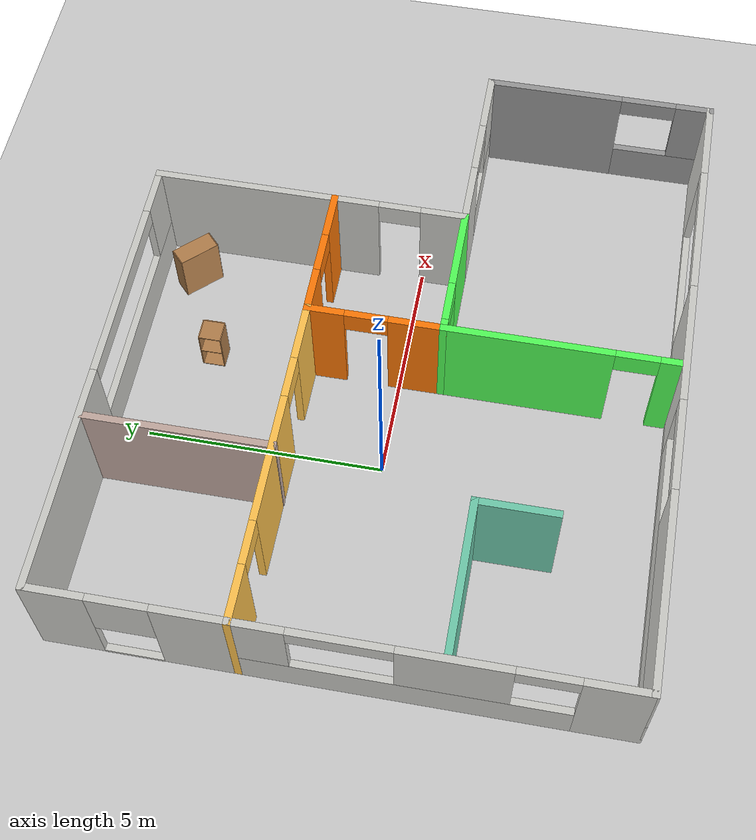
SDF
<sdf version="1.6">
 <world name="default">
  <model name="ground_plane">
   <static>1</static>
   <link name="link">
    <collision name="collision">
     <geometry><plane><normal>0 0 1</normal><size>100 100</size></plane></geometry>
     <surface>
      <contact><collide_bitmask>65535</collide_bitmask></contact>
      <friction><ode><mu>100</mu><mu2>50</mu2></ode></friction>
     </surface>
    </collision>
    <visual name="visual">
     <cast_shadows>0</cast_shadows>
     <geometry><plane><normal>0 0 1</normal><size>100 100</size></plane></geometry>
     <material>
      <script><uri>file://media/materials/scripts/gazebo.material</uri><name>Gazebo/Grey</name></script>
     </material>
    </visual>
   </link>
  </model>
  <model name="Apartment">
   <pose>2.01045 -0.0125 0 0 -0 0</pose>
   <link name="Wall_11">
    <pose>1.52493 1.92485 0 0 -0 0</pose>
    <visual name="Wall_11_Visual_0">
     <pose>-0.9825 0 1.25 0 -0 0</pose>
     <geometry><box><size>1.035 0.15 2.5</size></box></geometry>
     <material>
      <script><uri>file://media/materials/scripts/gazebo.material</uri><name>Gazebo/Grey</name></script>
      <ambient>0.996078 0.47451 0.0196078 1</ambient>
     </material>
     <meta><layer>0</layer></meta>
    </visual>
    <collision name="Wall_11_Collision_0">
     <geometry><box><size>1.035 0.15 2.5</size></box></geometry>
     <pose>-0.9825 0 1.25 0 -0 0</pose>
    </collision>
    <visual name="Wall_11_Visual_1">
     <pose>0.9675 0 1.25 0 -0 0</pose>
     <geometry><box><size>1.065 0.15 2.5</size></box></geometry>
     <material>
      <script><uri>file://media/materials/scripts/gazebo.material</uri><name>Gazebo/Grey</name></script>
      <ambient>0.996078 0.47451 0.0196078 1</ambient>
     </material>
     <meta><layer>0</layer></meta>
    </visual>
    <collision name="Wall_11_Collision_1">
     <geometry><box><size>1.065 0.15 2.5</size></box></geometry>
     <pose>0.9675 0 1.25 0 -0 0</pose>
    </collision>
    <visual name="Wall_11_Visual_2">
     <pose>-0.015 0 2.25 0 -0 0</pose>
     <geometry><box><size>0.9 0.15 0.5</size></box></geometry>
     <material>
      <script><uri>file://media/materials/scripts/gazebo.material</uri><name>Gazebo/Grey</name></script>
      <ambient>0.996078 0.47451 0.0196078 1</ambient>
     </material>
     <meta><layer>0</layer></meta>
    </visual>
    <collision name="Wall_11_Collision_2">
     <geometry><box><size>0.9 0.15 0.5</size></box></geometry>
     <pose>-0.015 0 2.25 0 -0 0</pose>
    </collision>
   </link>
   <link name="Wall_12">
    <pose>2.94993 0.519847 0 0 0 -1.5708</pose>
    <visual name="Wall_12_Visual_0">
     <pose>-0.962535 0 1.25 0 -0 0</pose>
     <geometry><box><size>1.03493 0.15 2.5</size></box></geometry>
     <material>
      <script><uri>file://media/materials/scripts/gazebo.material</uri><name>Gazebo/CeilingTiled</name></script>
      <ambient>1 1 1 1</ambient>
     </material>
     <meta><layer>0</layer></meta>
    </visual>
    <collision name="Wall_12_Collision_0">
     <geometry><box><size>1.03493 0.15 2.5</size></box></geometry>
     <pose>-0.962535 0 1.25 0 -0 0</pose>
    </collision>
    <visual name="Wall_12_Visual_1">
     <pose>0.967465 0 1.25 0 -0 0</pose>
     <geometry><box><size>1.02507 0.15 2.5</size></box></geometry>
     <material>
      <script><uri>file://media/materials/scripts/gazebo.material</uri><name>Gazebo/CeilingTiled</name></script>
      <ambient>1 1 1 1</ambient>
     </material>
     <meta><layer>0</layer></meta>
    </visual>
    <collision name="Wall_12_Collision_1">
     <geometry><box><size>1.02507 0.15 2.5</size></box></geometry>
     <pose>0.967465 0 1.25 0 -0 0</pose>
    </collision>
    <visual name="Wall_12_Visual_2">
     <pose>0.00493 0 2.25 0 -0 0</pose>
     <geometry><box><size>0.9 0.15 0.5</size></box></geometry>
     <material>
      <script><uri>file://media/materials/scripts/gazebo.material</uri><name>Gazebo/CeilingTiled</name></script>
      <ambient>1 1 1 1</ambient>
     </material>
     <meta><layer>0</layer></meta>
    </visual>
    <collision name="Wall_12_Collision_2">
     <geometry><box><size>0.9 0.15 0.5</size></box></geometry>
     <pose>0.00493 0 2.25 0 -0 0</pose>
    </collision>
   </link>
   <link name="Wall_13">
    <pose>1.52493 -0.885153 0 0 -0 3.14159</pose>
    <visual name="Wall_13_Visual_0">
     <pose>-0.592536 0 1.25 0 -0 0</pose>
     <geometry><box><size>1.81507 0.15 2.5</size></box></geometry>
     <material>
      <script><uri>file://media/materials/scripts/gazebo.material</uri><name>Gazebo/Grey</name></script>
      <ambient>0.321569 1 0.345098 1</ambient>
     </material>
     <meta><layer>0</layer></meta>
    </visual>
    <collision name="Wall_13_Collision_0">
     <geometry><box><size>1.81507 0.15 2.5</size></box></geometry>
     <pose>-0.592536 0 1.25 0 -0 0</pose>
    </collision>
    <visual name="Wall_13_Visual_1">
     <pose>1.35754 0 1.25 0 -0 0</pose>
     <geometry><box><size>0.285073 0.15 2.5</size></box></geometry>
     <material>
      <script><uri>file://media/materials/scripts/gazebo.material</uri><name>Gazebo/Grey</name></script>
      <ambient>0.321569 1 0.345098 1</ambient>
     </material>
     <meta><layer>0</layer></meta>
    </visual>
    <collision name="Wall_13_Collision_1">
     <geometry><box><size>0.285073 0.15 2.5</size></box></geometry>
     <pose>1.35754 0 1.25 0 -0 0</pose>
    </collision>
    <visual name="Wall_13_Visual_2">
     <pose>0.765 0 2.25 0 -0 0</pose>
     <geometry><box><size>0.9 0.15 0.5</size></box></geometry>
     <material>
      <script><uri>file://media/materials/scripts/gazebo.material</uri><name>Gazebo/Grey</name></script>
      <ambient>0.321569 1 0.345098 1</ambient>
     </material>
     <meta><layer>0</layer></meta>
    </visual>
    <collision name="Wall_13_Collision_2">
     <geometry><box><size>0.9 0.15 0.5</size></box></geometry>
     <pose>0.765 0 2.25 0 -0 0</pose>
    </collision>
   </link>
   <link name="Wall_14">
    <pose>0.099928 0.519847 0 0 -0 1.5708</pose>
    <visual name="Wall_14_Visual_0">
     <pose>-0.8739 0 1.25 0 -0 0</pose>
     <geometry><box><size>1.21261 0.15 2.5</size></box></geometry>
     <material>
      <script><uri>file://media/materials/scripts/gazebo.material</uri><name>Gazebo/Grey</name></script>
      <ambient>0.996078 0.47451 0.0196078 1</ambient>
     </material>
     <meta><layer>0</layer></meta>
    </visual>
    <collision name="Wall_14_Collision_0">
     <geometry><box><size>1.21261 0.15 2.5</size></box></geometry>
     <pose>-0.8739 0 1.25 0 -0 0</pose>
    </collision>
    <visual name="Wall_14_Visual_1">
     <pose>1.0563 0 1.25 0 -0 0</pose>
     <geometry><box><size>0.847799 0.15 2.5</size></box></geometry>
     <material>
      <script><uri>file://media/materials/scripts/gazebo.material</uri><name>Gazebo/Grey</name></script>
      <ambient>0.996078 0.47451 0.0196078 1</ambient>
     </material>
     <meta><layer>0</layer></meta>
    </visual>
    <collision name="Wall_14_Collision_1">
     <geometry><box><size>0.847799 0.15 2.5</size></box></geometry>
     <pose>1.0563 0 1.25 0 -0 0</pose>
    </collision>
    <visual name="Wall_14_Visual_2">
     <pose>0.182404 0 2.25 0 -0 0</pose>
     <geometry><box><size>0.9 0.15 0.5</size></box></geometry>
     <material>
      <script><uri>file://media/materials/scripts/gazebo.material</uri><name>Gazebo/Grey</name></script>
      <ambient>0.996078 0.47451 0.0196078 1</ambient>
     </material>
     <meta><layer>0</layer></meta>
    </visual>
    <collision name="Wall_14_Collision_2">
     <geometry><box><size>0.9 0.15 0.5</size></box></geometry>
     <pose>0.182404 0 2.25 0 -0 0</pose>
    </collision>
   </link>
   <link name="Wall_16">
    <pose>4.87493 -0.885153 0 0 -0 0</pose>
    <visual name="Wall_16_Visual_0">
     <pose>-1.29069 0 1.25 0 -0 0</pose>
     <geometry><box><size>1.41862 0.15 2.5</size></box></geometry>
     <material>
      <script><uri>file://media/materials/scripts/gazebo.material</uri><name>Gazebo/CeilingTiled</name></script>
      <ambient>0.760784 0.662745 0.627451 1</ambient>
     </material>
     <meta><layer>0</layer></meta>
    </visual>
    <collision name="Wall_16_Collision_0">
     <geometry><box><size>1.41862 0.15 2.5</size></box></geometry>
     <pose>-1.29069 0 1.25 0 -0 0</pose>
    </collision>
    <visual name="Wall_16_Visual_1">
     <pose>0.709309 0 0.45 0 -0 0</pose>
     <geometry><box><size>2.58138 0.15 0.9</size></box></geometry>
     <material>
      <script><uri>file://media/materials/scripts/gazebo.material</uri><name>Gazebo/CeilingTiled</name></script>
      <ambient>0.760784 0.662745 0.627451 1</ambient>
     </material>
     <meta><layer>0</layer></meta>
    </visual>
    <collision name="Wall_16_Collision_1">
     <geometry><box><size>2.58138 0.15 0.9</size></box></geometry>
     <pose>0.709309 0 0.45 0 -0 0</pose>
    </collision>
    <visual name="Wall_16_Visual_2">
     <pose>1.30931 0 1.7 0 -0 0</pose>
     <geometry><box><size>1.38138 0.15 1.6</size></box></geometry>
     <material>
      <script><uri>file://media/materials/scripts/gazebo.material</uri><name>Gazebo/CeilingTiled</name></script>
      <ambient>0.760784 0.662745 0.627451 1</ambient>
     </material>
     <meta><layer>0</layer></meta>
    </visual>
    <collision name="Wall_16_Collision_2">
     <geometry><box><size>1.38138 0.15 1.6</size></box></geometry>
     <pose>1.30931 0 1.7 0 -0 0</pose>
    </collision>
    <visual name="Wall_16_Visual_3">
     <pose>0.018619 0 2.3 0 -0 0</pose>
     <geometry><box><size>1.2 0.15 0.4</size></box></geometry>
     <material>
      <script><uri>file://media/materials/scripts/gazebo.material</uri><name>Gazebo/CeilingTiled</name></script>
      <ambient>0.760784 0.662745 0.627451 1</ambient>
     </material>
     <meta><layer>0</layer></meta>
    </visual>
    <collision name="Wall_16_Collision_3">
     <geometry><box><size>1.2 0.15 0.4</size></box></geometry>
     <pose>0.018619 0 2.3 0 -0 0</pose>
    </collision>
   </link>
   <link name="Wall_18">
    <pose>6.80018 -3.33 0 0 0 -1.57069</pose>
    <visual name="Wall_18_Visual_0">
     <pose>-1.01487 0 1.25 0 -0 0</pose>
     <geometry><box><size>3.00995 0.15 2.5</size></box></geometry>
     <material>
      <script><uri>file://media/materials/scripts/gazebo.material</uri><name>Gazebo/Grey</name></script>
      <ambient>1 1 1 1</ambient>
     </material>
     <meta><layer>0</layer></meta>
    </visual>
    <collision name="Wall_18_Collision_0">
     <geometry><box><size>3.00995 0.15 2.5</size></box></geometry>
     <pose>-1.01487 0 1.25 0 -0 0</pose>
    </collision>
    <visual name="Wall_18_Visual_1">
     <pose>1.50497 0 0.45 0 -0 0</pose>
     <geometry><box><size>2.02974 0.15 0.9</size></box></geometry>
     <material>
      <script><uri>file://media/materials/scripts/gazebo.material</uri><name>Gazebo/Grey</name></script>
      <ambient>1 1 1 1</ambient>
     </material>
     <meta><layer>0</layer></meta>
    </visual>
    <collision name="Wall_18_Collision_1">
     <geometry><box><size>2.02974 0.15 0.9</size></box></geometry>
     <pose>1.50497 0 0.45 0 -0 0</pose>
    </collision>
    <visual name="Wall_18_Visual_2">
     <pose>2.10497 0 1.7 0 -0 0</pose>
     <geometry><box><size>0.829741 0.15 1.6</size></box></geometry>
     <material>
      <script><uri>file://media/materials/scripts/gazebo.material</uri><name>Gazebo/Grey</name></script>
      <ambient>1 1 1 1</ambient>
     </material>
     <meta><layer>0</layer></meta>
    </visual>
    <collision name="Wall_18_Collision_2">
     <geometry><box><size>0.829741 0.15 1.6</size></box></geometry>
     <pose>2.10497 0 1.7 0 -0 0</pose>
    </collision>
    <visual name="Wall_18_Visual_3">
     <pose>1.0901 0 2.3 0 -0 0</pose>
     <geometry><box><size>1.2 0.15 0.4</size></box></geometry>
     <material>
      <script><uri>file://media/materials/scripts/gazebo.material</uri><name>Gazebo/Grey</name></script>
      <ambient>1 1 1 1</ambient>
     </material>
     <meta><layer>0</layer></meta>
    </visual>
    <collision name="Wall_18_Collision_3">
     <geometry><box><size>1.2 0.15 0.4</size></box></geometry>
     <pose>1.0901 0 2.3 0 -0 0</pose>
    </collision>
   </link>
   <link name="Wall_19">
    <pose>0.000427 -5.77484 0 0 -0 3.14159</pose>
    <visual name="Wall_19_Visual_0">
     <pose>-5.94597 0 1.25 0 -0 0</pose>
     <geometry><box><size>1.85806 0.15 2.5</size></box></geometry>
     <material>
      <script><uri>file://media/materials/scripts/gazebo.material</uri><name>Gazebo/CeilingTiled</name></script>
      <ambient>1 1 1 1</ambient>
     </material>
     <meta><layer>0</layer></meta>
    </visual>
    <collision name="Wall_19_Collision_0">
     <geometry><box><size>1.85806 0.15 2.5</size></box></geometry>
     <pose>-5.94597 0 1.25 0 -0 0</pose>
    </collision>
    <visual name="Wall_19_Visual_1">
     <pose>0.929031 0 0.1 0 -0 0</pose>
     <geometry><box><size>11.8919 0.15 0.2</size></box></geometry>
     <material>
      <script><uri>file://media/materials/scripts/gazebo.material</uri><name>Gazebo/CeilingTiled</name></script>
      <ambient>1 1 1 1</ambient>
     </material>
     <meta><layer>0</layer></meta>
    </visual>
    <collision name="Wall_19_Collision_1">
     <geometry><box><size>11.8919 0.15 0.2</size></box></geometry>
     <pose>0.929031 0 0.1 0 -0 0</pose>
    </collision>
    <visual name="Wall_19_Visual_2">
     <pose>-0.643119 0 1.35 0 -0 0</pose>
     <geometry><box><size>2.74764 0.15 2.3</size></box></geometry>
     <material>
      <script><uri>file://media/materials/scripts/gazebo.material</uri><name>Gazebo/CeilingTiled</name></script>
      <ambient>1 1 1 1</ambient>
     </material>
     <meta><layer>0</layer></meta>
    </visual>
    <collision name="Wall_19_Collision_2">
     <geometry><box><size>2.74764 0.15 2.3</size></box></geometry>
     <pose>-0.643119 0 1.35 0 -0 0</pose>
    </collision>
    <visual name="Wall_19_Visual_3">
     <pose>3.80285 0 0.55 0 -0 0</pose>
     <geometry><box><size>6.1443 0.15 0.7</size></box></geometry>
     <material>
      <script><uri>file://media/materials/scripts/gazebo.material</uri><name>Gazebo/CeilingTiled</name></script>
      <ambient>1 1 1 1</ambient>
     </material>
     <meta><layer>0</layer></meta>
    </visual>
    <collision name="Wall_19_Collision_3">
     <geometry><box><size>6.1443 0.15 0.7</size></box></geometry>
     <pose>3.80285 0 0.55 0 -0 0</pose>
    </collision>
    <visual name="Wall_19_Visual_4">
     <pose>4.80285 0 1.7 0 -0 0</pose>
     <geometry><box><size>4.1443 0.15 1.6</size></box></geometry>
     <material>
      <script><uri>file://media/materials/scripts/gazebo.material</uri><name>Gazebo/CeilingTiled</name></script>
      <ambient>1 1 1 1</ambient>
     </material>
     <meta><layer>0</layer></meta>
    </visual>
    <collision name="Wall_19_Collision_4">
     <geometry><box><size>4.1443 0.15 1.6</size></box></geometry>
     <pose>4.80285 0 1.7 0 -0 0</pose>
    </collision>
    <visual name="Wall_19_Visual_5">
     <pose>1.7307 0 2.3 0 -0 0</pose>
     <geometry><box><size>2 0.15 0.4</size></box></geometry>
     <material>
      <script><uri>file://media/materials/scripts/gazebo.material</uri><name>Gazebo/CeilingTiled</name></script>
      <ambient>1 1 1 1</ambient>
     </material>
     <meta><layer>0</layer></meta>
    </visual>
    <collision name="Wall_19_Collision_5">
     <geometry><box><size>2 0.15 0.4</size></box></geometry>
     <pose>1.7307 0 2.3 0 -0 0</pose>
    </collision>
    <visual name="Wall_19_Visual_6">
     <pose>-3.51694 0 2.35 0 -0 0</pose>
     <geometry><box><size>3 0.15 0.3</size></box></geometry>
     <material>
      <script><uri>file://media/materials/scripts/gazebo.material</uri><name>Gazebo/CeilingTiled</name></script>
      <ambient>1 1 1 1</ambient>
     </material>
     <meta><layer>0</layer></meta>
    </visual>
    <collision name="Wall_19_Collision_6">
     <geometry><box><size>3 0.15 0.3</size></box></geometry>
     <pose>-3.51694 0 2.35 0 -0 0</pose>
    </collision>
   </link>
   <link name="Wall_20">
    <pose>-6.79982 -1.925 0 0 -0 1.57086</pose>
    <visual name="Wall_20_Visual_0">
     <pose>-3.25093 0 1.25 0 -0 0</pose>
     <geometry><box><size>1.34782 0.15 2.5</size></box></geometry>
     <material>
      <script><uri>file://media/materials/scripts/gazebo.material</uri><name>Gazebo/CeilingTiled</name></script>
      <ambient>1 1 1 1</ambient>
     </material>
     <meta><layer>0</layer></meta>
    </visual>
    <collision name="Wall_20_Collision_0">
     <geometry><box><size>1.34782 0.15 2.5</size></box></geometry>
     <pose>-3.25093 0 1.25 0 -0 0</pose>
    </collision>
    <visual name="Wall_20_Visual_1">
     <pose>0.67391 0 0.45 0 -0 0</pose>
     <geometry><box><size>6.50187 0.15 0.9</size></box></geometry>
     <material>
      <script><uri>file://media/materials/scripts/gazebo.material</uri><name>Gazebo/CeilingTiled</name></script>
      <ambient>1 1 1 1</ambient>
     </material>
     <meta><layer>0</layer></meta>
    </visual>
    <collision name="Wall_20_Collision_1">
     <geometry><box><size>6.50187 0.15 0.9</size></box></geometry>
     <pose>0.67391 0 0.45 0 -0 0</pose>
    </collision>
    <visual name="Wall_20_Visual_2">
     <pose>-0.288611 0 1.7 0 -0 0</pose>
     <geometry><box><size>2.17682 0.15 1.6</size></box></geometry>
     <material>
      <script><uri>file://media/materials/scripts/gazebo.material</uri><name>Gazebo/CeilingTiled</name></script>
      <ambient>1 1 1 1</ambient>
     </material>
     <meta><layer>0</layer></meta>
    </visual>
    <collision name="Wall_20_Collision_2">
     <geometry><box><size>2.17682 0.15 1.6</size></box></geometry>
     <pose>-0.288611 0 1.7 0 -0 0</pose>
    </collision>
    <visual name="Wall_20_Visual_3">
     <pose>3.36232 0 1.7 0 -0 0</pose>
     <geometry><box><size>1.12504 0.15 1.6</size></box></geometry>
     <material>
      <script><uri>file://media/materials/scripts/gazebo.material</uri><name>Gazebo/CeilingTiled</name></script>
      <ambient>1 1 1 1</ambient>
     </material>
     <meta><layer>0</layer></meta>
    </visual>
    <collision name="Wall_20_Collision_3">
     <geometry><box><size>1.12504 0.15 1.6</size></box></geometry>
     <pose>3.36232 0 1.7 0 -0 0</pose>
    </collision>
    <visual name="Wall_20_Visual_4">
     <pose>-1.97702 0 2.3 0 -0 0</pose>
     <geometry><box><size>1.2 0.15 0.4</size></box></geometry>
     <material>
      <script><uri>file://media/materials/scripts/gazebo.material</uri><name>Gazebo/CeilingTiled</name></script>
      <ambient>1 1 1 1</ambient>
     </material>
     <meta><layer>0</layer></meta>
    </visual>
    <collision name="Wall_20_Collision_4">
     <geometry><box><size>1.2 0.15 0.4</size></box></geometry>
     <pose>-1.97702 0 2.3 0 -0 0</pose>
    </collision>
    <visual name="Wall_20_Visual_5">
     <pose>1.7998 0 2.3 0 -0 0</pose>
     <geometry><box><size>2 0.15 0.4</size></box></geometry>
     <material>
      <script><uri>file://media/materials/scripts/gazebo.material</uri><name>Gazebo/CeilingTiled</name></script>
      <ambient>1 1 1 1</ambient>
     </material>
     <meta><layer>0</layer></meta>
    </visual>
    <collision name="Wall_20_Collision_5">
     <geometry><box><size>2 0.15 0.4</size></box></geometry>
     <pose>1.7998 0 2.3 0 -0 0</pose>
    </collision>
   </link>
   <link name="Wall_21">
    <pose>-3.35007 1.92485 0 0 -0 0</pose>
    <visual name="Wall_21_Visual_0">
     <pose>-2.92004 0 1.25 0 -0 0</pose>
     <geometry><box><size>1.21065 0.15 2.5</size></box></geometry>
     <material>
      <script><uri>file://media/materials/scripts/gazebo.material</uri><name>Gazebo/Grey</name></script>
      <ambient>1 0.764706 0.305882 1</ambient>
     </material>
     <meta><layer>0</layer></meta>
    </visual>
    <collision name="Wall_21_Collision_0">
     <geometry><box><size>1.21065 0.15 2.5</size></box></geometry>
     <pose>-2.92004 0 1.25 0 -0 0</pose>
    </collision>
    <visual name="Wall_21_Visual_1">
     <pose>-0.045749 0 1.25 0 -0 0</pose>
     <geometry><box><size>2.73793 0.15 2.5</size></box></geometry>
     <material>
      <script><uri>file://media/materials/scripts/gazebo.material</uri><name>Gazebo/Grey</name></script>
      <ambient>1 0.764706 0.305882 1</ambient>
     </material>
     <meta><layer>0</layer></meta>
    </visual>
    <collision name="Wall_21_Collision_1">
     <geometry><box><size>2.73793 0.15 2.5</size></box></geometry>
     <pose>-0.045749 0 1.25 0 -0 0</pose>
    </collision>
    <visual name="Wall_21_Visual_2">
     <pose>2.87429 0 1.25 0 -0 0</pose>
     <geometry><box><size>1.30214 0.15 2.5</size></box></geometry>
     <material>
      <script><uri>file://media/materials/scripts/gazebo.material</uri><name>Gazebo/Grey</name></script>
      <ambient>1 0.764706 0.305882 1</ambient>
     </material>
     <meta><layer>0</layer></meta>
    </visual>
    <collision name="Wall_21_Collision_2">
     <geometry><box><size>1.30214 0.15 2.5</size></box></geometry>
     <pose>2.87429 0 1.25 0 -0 0</pose>
    </collision>
    <visual name="Wall_21_Visual_3">
     <pose>-1.86471 0 2.25 0 -0 0</pose>
     <geometry><box><size>0.9 0.15 0.5</size></box></geometry>
     <material>
      <script><uri>file://media/materials/scripts/gazebo.material</uri><name>Gazebo/Grey</name></script>
      <ambient>1 0.764706 0.305882 1</ambient>
     </material>
     <meta><layer>0</layer></meta>
    </visual>
    <collision name="Wall_21_Collision_3">
     <geometry><box><size>0.9 0.15 0.5</size></box></geometry>
     <pose>-1.86471 0 2.25 0 -0 0</pose>
    </collision>
    <visual name="Wall_21_Visual_4">
     <pose>1.77322 0 2.25 0 -0 0</pose>
     <geometry><box><size>0.9 0.15 0.5</size></box></geometry>
     <material>
      <script><uri>file://media/materials/scripts/gazebo.material</uri><name>Gazebo/Grey</name></script>
      <ambient>1 0.764706 0.305882 1</ambient>
     </material>
     <meta><layer>0</layer></meta>
    </visual>
    <collision name="Wall_21_Collision_4">
     <geometry><box><size>0.9 0.15 0.5</size></box></geometry>
     <pose>1.77322 0 2.25 0 -0 0</pose>
    </collision>
   </link>
   <link name="Wall_23">
    <pose>-6.80007 3.84985 0 0 -0 1.5708</pose>
    <visual name="Wall_23_Visual_0">
     <pose>-1.23081 0 1.25 0 -0 0</pose>
     <geometry><box><size>1.53838 0.15 2.5</size></box></geometry>
     <material>
      <script><uri>file://media/materials/scripts/gazebo.material</uri><name>Gazebo/CeilingTiled</name></script>
      <ambient>1 1 1 1</ambient>
     </material>
     <meta><layer>0</layer></meta>
    </visual>
    <collision name="Wall_23_Collision_0">
     <geometry><box><size>1.53838 0.15 2.5</size></box></geometry>
     <pose>-1.23081 0 1.25 0 -0 0</pose>
    </collision>
    <visual name="Wall_23_Visual_1">
     <pose>1.36919 0 1.25 0 -0 0</pose>
     <geometry><box><size>1.26162 0.15 2.5</size></box></geometry>
     <material>
      <script><uri>file://media/materials/scripts/gazebo.material</uri><name>Gazebo/CeilingTiled</name></script>
      <ambient>1 1 1 1</ambient>
     </material>
     <meta><layer>0</layer></meta>
    </visual>
    <collision name="Wall_23_Collision_1">
     <geometry><box><size>1.26162 0.15 2.5</size></box></geometry>
     <pose>1.36919 0 1.25 0 -0 0</pose>
    </collision>
    <visual name="Wall_23_Visual_2">
     <pose>0.138378 0 0 0 -0 0</pose>
     <geometry><box><size>1.2 0.15 0.1</size></box></geometry>
     <material>
      <script><uri>file://media/materials/scripts/gazebo.material</uri><name>Gazebo/CeilingTiled</name></script>
      <ambient>1 1 1 1</ambient>
     </material>
     <meta><layer>0</layer></meta>
    </visual>
    <collision name="Wall_23_Collision_2">
     <geometry><box><size>1.2 0.15 0.1</size></box></geometry>
     <pose>0.138378 0 0 0 -0 0</pose>
    </collision>
    <visual name="Wall_23_Visual_3">
     <pose>0.138378 0 1.85 0 -0 0</pose>
     <geometry><box><size>1.2 0.15 1.3</size></box></geometry>
     <material>
      <script><uri>file://media/materials/scripts/gazebo.material</uri><name>Gazebo/CeilingTiled</name></script>
      <ambient>1 1 1 1</ambient>
     </material>
     <meta><layer>0</layer></meta>
    </visual>
    <collision name="Wall_23_Collision_3">
     <geometry><box><size>1.2 0.15 1.3</size></box></geometry>
     <pose>0.138378 0 1.85 0 -0 0</pose>
    </collision>
   </link>
   <link name="Wall_24">
    <pose>-1.92507 5.77485 0 0 -0 0</pose>
    <visual name="Wall_24_Visual_0">
     <pose>-2.56096 0 1.25 0 -0 0</pose>
     <geometry><box><size>4.77807 0.15 2.5</size></box></geometry>
     <material>
      <script><uri>file://media/materials/scripts/gazebo.material</uri><name>Gazebo/CeilingTiled</name></script>
      <ambient>1 1 1 1</ambient>
     </material>
     <meta><layer>0</layer></meta>
    </visual>
    <collision name="Wall_24_Collision_0">
     <geometry><box><size>4.77807 0.15 2.5</size></box></geometry>
     <pose>-2.56096 0 1.25 0 -0 0</pose>
    </collision>
    <visual name="Wall_24_Visual_1">
     <pose>2.38903 0 0.45 0 -0 0</pose>
     <geometry><box><size>5.12193 0.15 0.9</size></box></geometry>
     <material>
      <script><uri>file://media/materials/scripts/gazebo.material</uri><name>Gazebo/CeilingTiled</name></script>
      <ambient>1 1 1 1</ambient>
     </material>
     <meta><layer>0</layer></meta>
    </visual>
    <collision name="Wall_24_Collision_1">
     <geometry><box><size>5.12193 0.15 0.9</size></box></geometry>
     <pose>2.38903 0 0.45 0 -0 0</pose>
    </collision>
    <visual name="Wall_24_Visual_2">
     <pose>4.38903 0 1.7 0 -0 0</pose>
     <geometry><box><size>1.12193 0.15 1.6</size></box></geometry>
     <material>
      <script><uri>file://media/materials/scripts/gazebo.material</uri><name>Gazebo/CeilingTiled</name></script>
      <ambient>1 1 1 1</ambient>
     </material>
     <meta><layer>0</layer></meta>
    </visual>
    <collision name="Wall_24_Collision_2">
     <geometry><box><size>1.12193 0.15 1.6</size></box></geometry>
     <pose>4.38903 0 1.7 0 -0 0</pose>
    </collision>
    <visual name="Wall_24_Visual_3">
     <pose>1.82807 0 2.3 0 -0 0</pose>
     <geometry><box><size>4 0.15 0.4</size></box></geometry>
     <material>
      <script><uri>file://media/materials/scripts/gazebo.material</uri><name>Gazebo/CeilingTiled</name></script>
      <ambient>1 1 1 1</ambient>
     </material>
     <meta><layer>0</layer></meta>
    </visual>
    <collision name="Wall_24_Collision_3">
     <geometry><box><size>4 0.15 0.4</size></box></geometry>
     <pose>1.82807 0 2.3 0 -0 0</pose>
    </collision>
   </link>
   <link name="Wall_25">
    <collision name="Wall_25_Collision">
     <geometry><box><size>3.99969 0.15 2.5</size></box></geometry>
     <pose>0 0 1.25 0 -0 0</pose>
    </collision>
    <visual name="Wall_25_Visual">
     <pose>0 0 1.25 0 -0 0</pose>
     <geometry><box><size>3.99969 0.15 2.5</size></box></geometry>
     <material>
      <script><uri>file://media/materials/scripts/gazebo.material</uri><name>Gazebo/CeilingTiled</name></script>
      <ambient>1 1 1 1</ambient>
     </material>
     <meta><layer>0</layer></meta>
    </visual>
    <pose>2.94993 3.84985 0 0 0 -1.5708</pose>
   </link>
   <link name="Wall_27">
    <collision name="Wall_27_Collision">
     <geometry><box><size>4 0.15 2.5</size></box></geometry>
     <pose>0 0 1.25 0 -0 0</pose>
    </collision>
    <visual name="Wall_27_Visual">
     <pose>0 0 1.25 0 -0 0</pose>
     <geometry><box><size>4 0.15 2.5</size></box></geometry>
     <material>
      <script><uri>file://media/materials/scripts/gazebo.material</uri><name>Gazebo/Grey</name></script>
      <ambient>0.760784 0.662745 0.627451 1</ambient>
     </material>
     <meta><layer>0</layer></meta>
    </visual>
    <pose>-3.13347 3.83972 0 0 -0 1.5708</pose>
   </link>
   <link name="Wall_31">
    <pose>0.099928 -3.31015 0 0 0 -1.5708</pose>
    <visual name="Wall_31_Visual_0">
     <pose>-0.723829 0 1.25 0 -0 0</pose>
     <geometry><box><size>3.55234 0.15 2.5</size></box></geometry>
     <material>
      <script><uri>file://media/materials/scripts/gazebo.material</uri><name>Gazebo/Grey</name></script>
      <ambient>0.321569 1 0.345098 1</ambient>
     </material>
     <meta><layer>0</layer></meta>
    </visual>
    <collision name="Wall_31_Collision_0">
     <geometry><box><size>3.55234 0.15 2.5</size></box></geometry>
     <pose>-0.723829 0 1.25 0 -0 0</pose>
    </collision>
    <visual name="Wall_31_Visual_1">
     <pose>2.22617 0 1.25 0 -0 0</pose>
     <geometry><box><size>0.547658 0.15 2.5</size></box></geometry>
     <material>
      <script><uri>file://media/materials/scripts/gazebo.material</uri><name>Gazebo/Grey</name></script>
      <ambient>0.321569 1 0.345098 1</ambient>
     </material>
     <meta><layer>0</layer></meta>
    </visual>
    <collision name="Wall_31_Collision_1">
     <geometry><box><size>0.547658 0.15 2.5</size></box></geometry>
     <pose>2.22617 0 1.25 0 -0 0</pose>
    </collision>
    <visual name="Wall_31_Visual_2">
     <pose>1.50234 0 2.25 0 -0 0</pose>
     <geometry><box><size>0.9 0.15 0.5</size></box></geometry>
     <material>
      <script><uri>file://media/materials/scripts/gazebo.material</uri><name>Gazebo/Grey</name></script>
      <ambient>0.321569 1 0.345098 1</ambient>
     </material>
     <meta><layer>0</layer></meta>
    </visual>
    <collision name="Wall_31_Collision_2">
     <geometry><box><size>0.9 0.15 0.5</size></box></geometry>
     <pose>1.50234 0 2.25 0 -0 0</pose>
    </collision>
   </link>
   <link name="Wall_35">
    <collision name="Wall_35_Collision">
     <geometry><box><size>3.25 0.15 2.5</size></box></geometry>
     <pose>0 0 1.25 0 -0 0</pose>
    </collision>
    <visual name="Wall_35_Visual">
     <pose>0 0 1.25 0 -0 0</pose>
     <geometry><box><size>3.25 0.15 2.5</size></box></geometry>
     <material>
      <script><uri>file://media/materials/scripts/gazebo.material</uri><name>Gazebo/Grey</name></script>
      <ambient>0.435294 0.796078 0.67451 1</ambient>
     </material>
     <meta><layer>0</layer></meta>
    </visual>
    <pose>-5.17735 -2.08457 0 0 -0 0</pose>
   </link>
   <link name="Wall_36">
    <collision name="Wall_36_Collision">
     <geometry><box><size>1.75 0.15 2.5</size></box></geometry>
     <pose>0 0 1.25 0 -0 0</pose>
    </collision>
    <visual name="Wall_36_Visual">
     <pose>0 0 1.25 0 -0 0</pose>
     <geometry><box><size>1.75 0.15 2.5</size></box></geometry>
     <material>
      <script><uri>file://media/materials/scripts/gazebo.material</uri><name>Gazebo/Grey</name></script>
      <ambient>0.435294 0.796078 0.67451 1</ambient>
     </material>
     <meta><layer>0</layer></meta>
    </visual>
    <pose>-3.62735 -2.88457 0 0 0 -1.5708</pose>
   </link>
   <static>1</static>
  </model>
  <model name="cabinet_clone_1">
   <static>1</static>
   <link name="cabinet_bottom_plate">
    <inertial>
     <pose>0 0 -1 0 -0 0</pose>
     <inertia><ixx>2.05</ixx><ixy>0</ixy><ixz>0</ixz><iyy>2.05</iyy><iyz>0</iyz><izz>2.05</izz></inertia>
     <mass>25</mass>
    </inertial>
    <collision name="cabinet_bottom_plate_geom">
     <pose>0 0 0.01 0 -0 0</pose>
     <geometry><box><size>0.45 0.45 0.02</size></box></geometry>
    </collision>
    <visual name="cabinet_bottom_plate_geom_visual">
     <pose>0 0 0.01 0 -0 0</pose>
     <geometry><box><size>0.45 0.45 0.02</size></box></geometry>
     <material>
      <script><uri>file://media/materials/scripts/gazebo.material</uri><name>Gazebo/Wood</name></script>
     </material>
    </visual>
    <collision name="cabinet_bottom_plate_geom_cabinet_back_plate">
     <pose>0.235 0 0.51 0 -0 0</pose>
     <geometry><box><size>0.02 0.45 1.02</size></box></geometry>
    </collision>
    <visual name="cabinet_bottom_plate_geom_cabinet_back_plate_visual">
     <pose>0.235 0 0.51 0 -0 0</pose>
     <geometry><box><size>0.02 0.45 1.02</size></box></geometry>
     <material>
      <script><uri>file://media/materials/scripts/gazebo.material</uri><name>Gazebo/Wood</name></script>
     </material>
    </visual>
    <collision name="cabinet_bottom_plate_geom_cabinet_left_plate">
     <pose>0 0.235 0.51 0 -0 0</pose>
     <geometry><box><size>0.45 0.02 1.02</size></box></geometry>
    </collision>
    <visual name="cabinet_bottom_plate_geom_cabinet_left_plate_visual">
     <pose>0 0.235 0.51 0 -0 0</pose>
     <geometry><box><size>0.45 0.02 1.02</size></box></geometry>
     <material>
      <script><uri>file://media/materials/scripts/gazebo.material</uri><name>Gazebo/Wood</name></script>
     </material>
    </visual>
    <collision name="cabinet_bottom_plate_geom_cabinet_middle_plate">
     <pose>0 0 0.51 0 -0 0</pose>
     <geometry><box><size>0.45 0.45 0.02</size></box></geometry>
    </collision>
    <visual name="cabinet_bottom_plate_geom_cabinet_middle_plate_visual">
     <pose>0 0 0.51 0 -0 0</pose>
     <geometry><box><size>0.45 0.45 0.02</size></box></geometry>
     <material>
      <script><uri>file://media/materials/scripts/gazebo.material</uri><name>Gazebo/Wood</name></script>
     </material>
    </visual>
    <collision name="cabinet_bottom_plate_geom_cabinet_right_plate">
     <pose>0 -0.235 0.51 0 -0 0</pose>
     <geometry><box><size>0.45 0.02 1.02</size></box></geometry>
    </collision>
    <visual name="cabinet_bottom_plate_geom_cabinet_right_plate_visual">
     <pose>0 -0.235 0.51 0 -0 0</pose>
     <geometry><box><size>0.45 0.02 1.02</size></box></geometry>
     <material>
      <script><uri>file://media/materials/scripts/gazebo.material</uri><name>Gazebo/Wood</name></script>
     </material>
    </visual>
    <collision name="cabinet_bottom_plate_geom_cabinet_top_plate">
     <pose>0 0 1.01 0 -0 0</pose>
     <geometry><box><size>0.45 0.45 0.02</size></box></geometry>
    </collision>
    <visual name="cabinet_bottom_plate_geom_cabinet_top_plate_visual">
     <pose>0 0 1.01 0 -0 0</pose>
     <geometry><box><size>0.45 0.45 0.02</size></box></geometry>
     <material>
      <script><uri>file://media/materials/scripts/gazebo.material</uri><name>Gazebo/Wood</name></script>
     </material>
    </visual>
   </link>
   <pose>2.69652 1.59159 -0.005029 0 -0 0</pose>
  </model>
  <model name="bookshelf_clone_2_clone_0">
   <static>1</static>
   <link name="link">
    <inertial><mass>1</mass></inertial>
    <collision name="back">
     <pose>0 0.005 0.6 0 -0 0</pose>
     <geometry><box><size>0.9 0.01 1.2</size></box></geometry>
    </collision>
    <visual name="visual1">
     <pose>0 0.005 0.6 0 -0 0</pose>
     <geometry><box><size>0.9 0.01 1.2</size></box></geometry>
     <material>
      <script><uri>file://media/materials/scripts/gazebo.material</uri><name>Gazebo/Wood</name></script>
     </material>
    </visual>
    <collision name="left_side">
     <pose>0.45 -0.195 0.6 0 -0 0</pose>
     <geometry><box><size>0.02 0.4 1.2</size></box></geometry>
    </collision>
    <visual name="visual2">
     <pose>0.45 -0.195 0.6 0 -0 0</pose>
     <geometry><box><size>0.02 0.4 1.2</size></box></geometry>
     <material>
      <script><uri>file://media/materials/scripts/gazebo.material</uri><name>Gazebo/Wood</name></script>
     </material>
    </visual>
    <collision name="right_side">
     <pose>-0.45 -0.195 0.6 0 -0 0</pose>
     <geometry><box><size>0.02 0.4 1.2</size></box></geometry>
    </collision>
    <visual name="visual3">
     <pose>-0.45 -0.195 0.6 0 -0 0</pose>
     <geometry><box><size>0.02 0.4 1.2</size></box></geometry>
     <material>
      <script><uri>file://media/materials/scripts/gazebo.material</uri><name>Gazebo/Wood</name></script>
     </material>
    </visual>
    <collision name="bottom">
     <pose>0 -0.195 0.03 0 -0 0</pose>
     <geometry><box><size>0.88 0.4 0.06</size></box></geometry>
    </collision>
    <visual name="visual4">
     <pose>0 -0.195 0.03 0 -0 0</pose>
     <geometry><box><size>0.88 0.4 0.06</size></box></geometry>
     <material>
      <script><uri>file://media/materials/scripts/gazebo.material</uri><name>Gazebo/Wood</name></script>
     </material>
    </visual>
    <collision name="top">
     <pose>0 -0.195 1.19 0 -0 0</pose>
     <geometry><box><size>0.88 0.4 0.02</size></box></geometry>
    </collision>
    <visual name="visual5">
     <pose>0 -0.195 1.19 0 -0 0</pose>
     <geometry><box><size>0.88 0.4 0.02</size></box></geometry>
     <material>
      <script><uri>file://media/materials/scripts/gazebo.material</uri><name>Gazebo/Wood</name></script>
     </material>
    </visual>
    <collision name="low_shelf">
     <pose>0 -0.195 0.43 0 -0 0</pose>
     <geometry><box><size>0.88 0.4 0.02</size></box></geometry>
    </collision>
    <visual name="visual6">
     <pose>0 -0.195 0.43 0 -0 0</pose>
     <geometry><box><size>0.88 0.4 0.02</size></box></geometry>
     <material>
      <script><uri>file://media/materials/scripts/gazebo.material</uri><name>Gazebo/Wood</name></script>
     </material>
    </visual>
    <collision name="high_shelf">
     <pose>0 -0.195 0.8 0 -0 0</pose>
     <geometry><box><size>0.88 0.4 0.02</size></box></geometry>
    </collision>
    <visual name="visual7">
     <pose>0 -0.195 0.8 0 -0 0</pose>
     <geometry><box><size>0.88 0.4 0.02</size></box></geometry>
     <material>
      <script><uri>file://media/materials/scripts/gazebo.material</uri><name>Gazebo/Wood</name></script>
     </material>
    </visual>
   </link>
   <pose>3.91675 4.76093 0 0 -0 2.33147</pose>
  </model>
  <model name="cabinet_clone_5_clone">
   <static>1</static>
   <link name="cabinet_bottom_plate">
    <inertial>
     <pose>0 0 -1 0 -0 0</pose>
     <inertia><ixx>2.05</ixx><ixy>0</ixy><ixz>0</ixz><iyy>2.05</iyy><iyz>0</iyz><izz>2.05</izz></inertia>
     <mass>25</mass>
    </inertial>
    <collision name="cabinet_bottom_plate_geom">
     <pose>0 0 0.01 0 -0 0</pose>
     <geometry><box><size>0.45 0.45 0.02</size></box></geometry>
    </collision>
    <visual name="cabinet_bottom_plate_geom_visual">
     <pose>0 0 0.01 0 -0 0</pose>
     <geometry><box><size>0.45 0.45 0.02</size></box></geometry>
     <material>
      <script><uri>file://media/materials/scripts/gazebo.material</uri><name>Gazebo/Wood</name></script>
     </material>
    </visual>
    <collision name="cabinet_bottom_plate_geom_cabinet_back_plate">
     <pose>0.235 0 0.51 0 -0 0</pose>
     <geometry><box><size>0.02 0.45 1.02</size></box></geometry>
    </collision>
    <visual name="cabinet_bottom_plate_geom_cabinet_back_plate_visual">
     <pose>0.235 0 0.51 0 -0 0</pose>
     <geometry><box><size>0.02 0.45 1.02</size></box></geometry>
     <material>
      <script><uri>file://media/materials/scripts/gazebo.material</uri><name>Gazebo/Wood</name></script>
     </material>
    </visual>
    <collision name="cabinet_bottom_plate_geom_cabinet_left_plate">
     <pose>0 0.235 0.51 0 -0 0</pose>
     <geometry><box><size>0.45 0.02 1.02</size></box></geometry>
    </collision>
    <visual name="cabinet_bottom_plate_geom_cabinet_left_plate_visual">
     <pose>0 0.235 0.51 0 -0 0</pose>
     <geometry><box><size>0.45 0.02 1.02</size></box></geometry>
     <material>
      <script><uri>file://media/materials/scripts/gazebo.material</uri><name>Gazebo/Wood</name></script>
     </material>
    </visual>
    <collision name="cabinet_bottom_plate_geom_cabinet_middle_plate">
     <pose>0 0 0.51 0 -0 0</pose>
     <geometry><box><size>0.45 0.45 0.02</size></box></geometry>
    </collision>
    <visual name="cabinet_bottom_plate_geom_cabinet_middle_plate_visual">
     <pose>0 0 0.51 0 -0 0</pose>
     <geometry><box><size>0.45 0.45 0.02</size></box></geometry>
     <material>
      <script><uri>file://media/materials/scripts/gazebo.material</uri><name>Gazebo/Wood</name></script>
     </material>
    </visual>
    <collision name="cabinet_bottom_plate_geom_cabinet_right_plate">
     <pose>0 -0.235 0.51 0 -0 0</pose>
     <geometry><box><size>0.45 0.02 1.02</size></box></geometry>
    </collision>
    <visual name="cabinet_bottom_plate_geom_cabinet_right_plate_visual">
     <pose>0 -0.235 0.51 0 -0 0</pose>
     <geometry><box><size>0.45 0.02 1.02</size></box></geometry>
     <material>
      <script><uri>file://media/materials/scripts/gazebo.material</uri><name>Gazebo/Wood</name></script>
     </material>
    </visual>
    <collision name="cabinet_bottom_plate_geom_cabinet_top_plate">
     <pose>0 0 1.01 0 -0 0</pose>
     <geometry><box><size>0.45 0.45 0.02</size></box></geometry>
    </collision>
    <visual name="cabinet_bottom_plate_geom_cabinet_top_plate_visual">
     <pose>0 0 1.01 0 -0 0</pose>
     <geometry><box><size>0.45 0.45 0.02</size></box></geometry>
     <material>
      <script><uri>file://media/materials/scripts/gazebo.material</uri><name>Gazebo/Wood</name></script>
     </material>
    </visual>
   </link>
   <pose>2.13599 4.06966 -0.005029 0 -0 0</pose>
  </model>
 </world>
</sdf>
